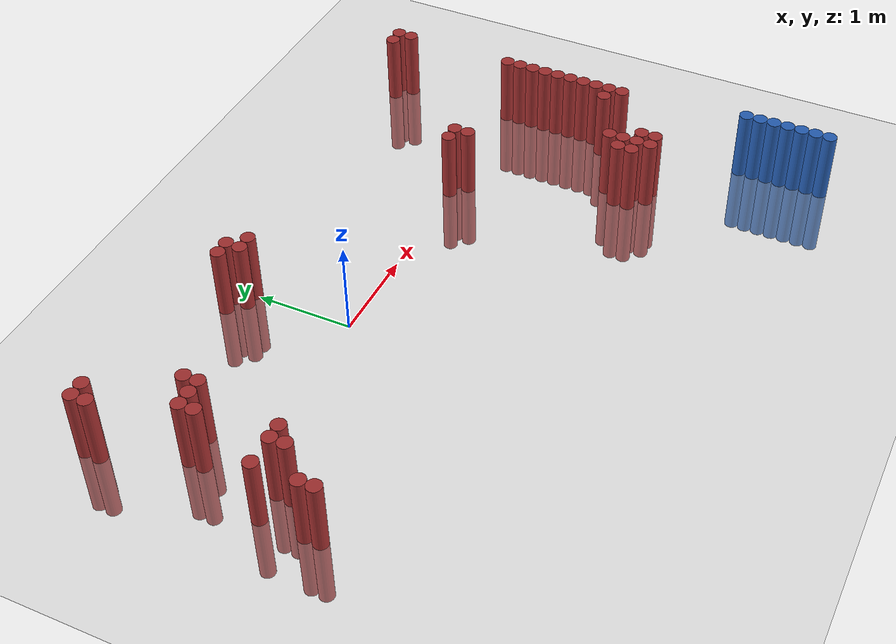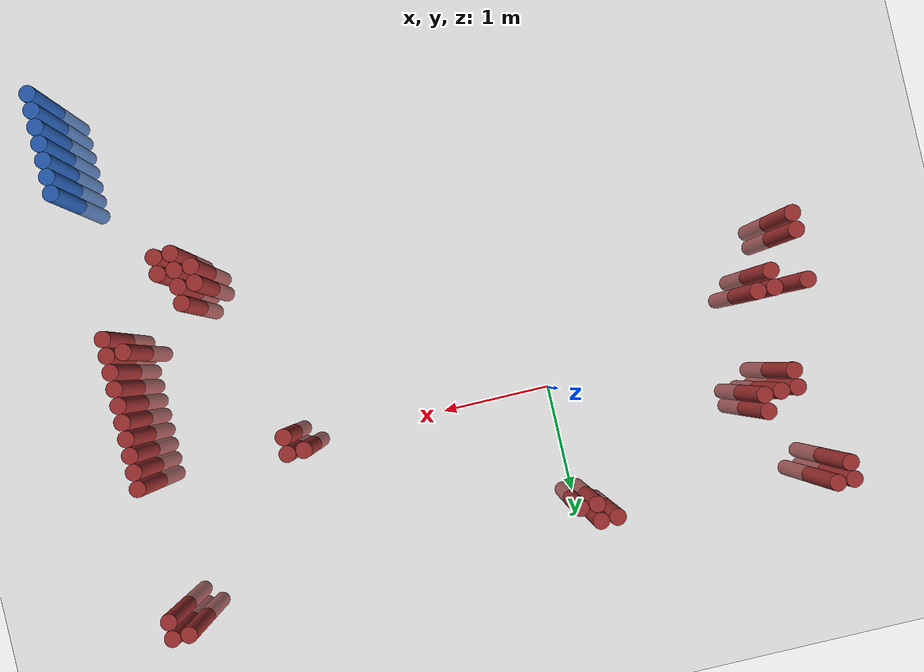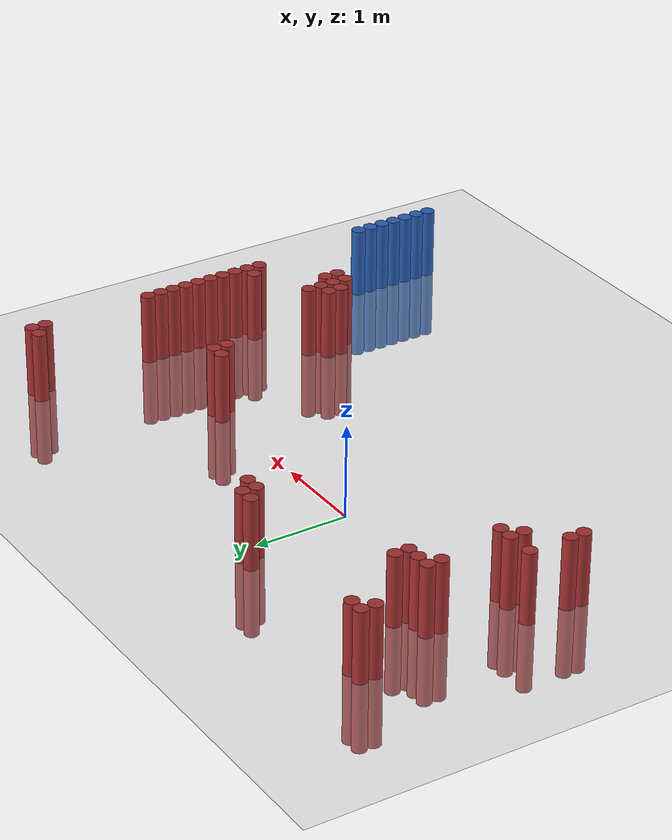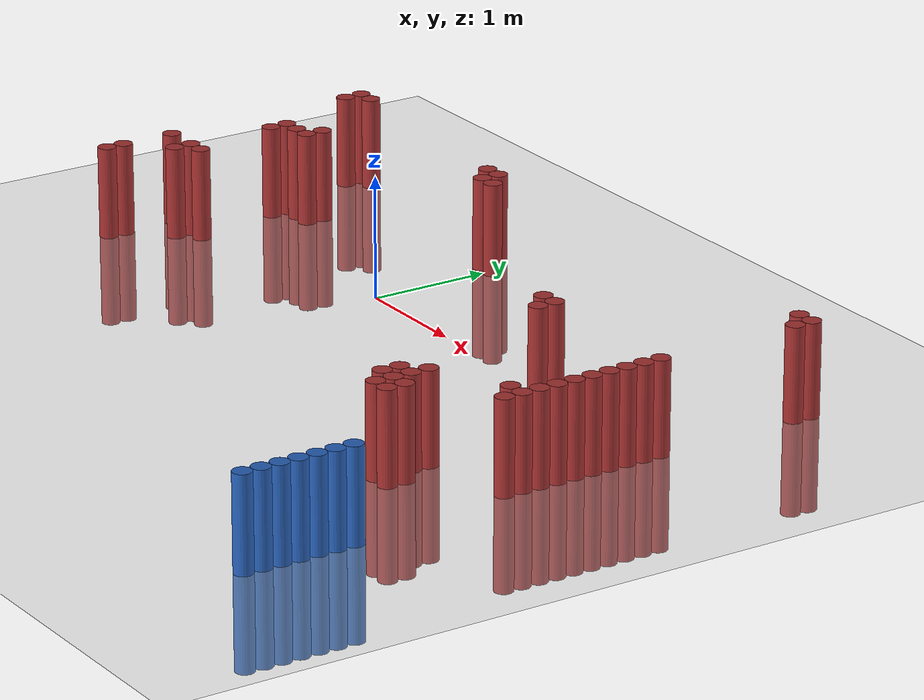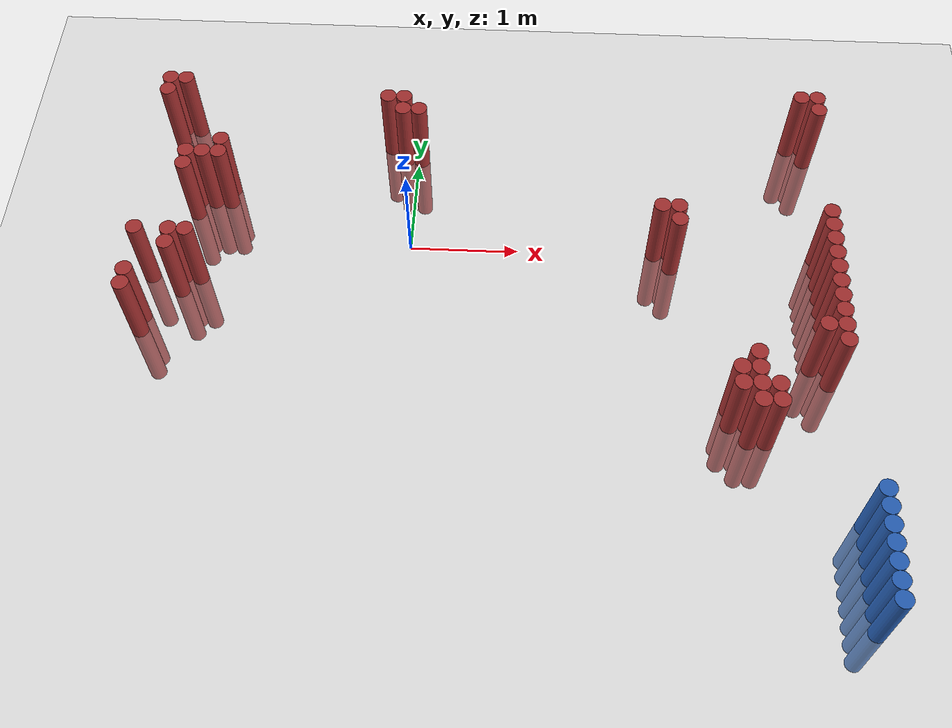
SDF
<sdf version="1.6">
 <world name="default">
  <model name="ground_plane">
   <static>1</static>
   <link name="link">
    <collision name="collision">
     <geometry><plane><normal>0 0 1</normal><size>100 100</size></plane></geometry>
     <surface><friction><ode><mu>100</mu><mu2>50</mu2></ode></friction></surface>
    </collision>
    <visual name="visual">
     <cast_shadows>0</cast_shadows>
     <geometry><plane><normal>0 0 1</normal><size>100 100</size></plane></geometry>
     <material>
      <script><uri>file://media/materials/scripts/gazebo.material</uri><name>Gazebo/Grey</name></script>
     </material>
    </visual>
   </link>
  </model>
  <model name="unit_cylinder_66">
   <static>1</static>
   <pose>3.925000 -3.575000 0.000000 0.000000 0.000000 0.000000</pose>
   <link name="link">
    <inertial>
     <mass>1</mass>
     <inertia><ixx>0.145833</ixx><ixy>0</ixy><ixz>0</ixz><iyy>0.145833</iyy><iyz>0</iyz><izz>0.125</izz></inertia>
    </inertial>
    <collision name="collision">
     <geometry><cylinder><radius>0.075000</radius><length>1.5</length></cylinder></geometry>
    </collision>
    <visual name="visual">
     <geometry><cylinder><radius>0.075000</radius><length>1.5</length></cylinder></geometry>
     <material>
      <ambient>0.152000 0.379000 0.720000 1</ambient>
      <diffuse>0.152000 0.379000 0.720000 1</diffuse>
     </material>
     <material>
      <script><name>Gazebo/Grey</name><uri>file://media/materials/scripts/gazebo.material</uri></script>
     </material>
    </visual>
   </link>
  </model>
  <model name="unit_cylinder_68">
   <static>1</static>
   <pose>3.925000 -3.425000 0.000000 0.000000 0.000000 0.000000</pose>
   <link name="link">
    <inertial>
     <mass>1</mass>
     <inertia><ixx>0.145833</ixx><ixy>0</ixy><ixz>0</ixz><iyy>0.145833</iyy><iyz>0</iyz><izz>0.125</izz></inertia>
    </inertial>
    <collision name="collision">
     <geometry><cylinder><radius>0.075000</radius><length>1.5</length></cylinder></geometry>
    </collision>
    <visual name="visual">
     <geometry><cylinder><radius>0.075000</radius><length>1.5</length></cylinder></geometry>
     <material>
      <ambient>0.152000 0.379000 0.720000 1</ambient>
      <diffuse>0.152000 0.379000 0.720000 1</diffuse>
     </material>
     <material>
      <script><name>Gazebo/Grey</name><uri>file://media/materials/scripts/gazebo.material</uri></script>
     </material>
    </visual>
   </link>
  </model>
  <model name="unit_cylinder_70">
   <static>1</static>
   <pose>3.925000 -3.275000 0.000000 0.000000 0.000000 0.000000</pose>
   <link name="link">
    <inertial>
     <mass>1</mass>
     <inertia><ixx>0.145833</ixx><ixy>0</ixy><ixz>0</ixz><iyy>0.145833</iyy><iyz>0</iyz><izz>0.125</izz></inertia>
    </inertial>
    <collision name="collision">
     <geometry><cylinder><radius>0.075000</radius><length>1.5</length></cylinder></geometry>
    </collision>
    <visual name="visual">
     <geometry><cylinder><radius>0.075000</radius><length>1.5</length></cylinder></geometry>
     <material>
      <ambient>0.152000 0.379000 0.720000 1</ambient>
      <diffuse>0.152000 0.379000 0.720000 1</diffuse>
     </material>
     <material>
      <script><name>Gazebo/Grey</name><uri>file://media/materials/scripts/gazebo.material</uri></script>
     </material>
    </visual>
   </link>
  </model>
  <model name="unit_cylinder_72">
   <static>1</static>
   <pose>3.925000 -3.125000 0.000000 0.000000 0.000000 0.000000</pose>
   <link name="link">
    <inertial>
     <mass>1</mass>
     <inertia><ixx>0.145833</ixx><ixy>0</ixy><ixz>0</ixz><iyy>0.145833</iyy><iyz>0</iyz><izz>0.125</izz></inertia>
    </inertial>
    <collision name="collision">
     <geometry><cylinder><radius>0.075000</radius><length>1.5</length></cylinder></geometry>
    </collision>
    <visual name="visual">
     <geometry><cylinder><radius>0.075000</radius><length>1.5</length></cylinder></geometry>
     <material>
      <ambient>0.152000 0.379000 0.720000 1</ambient>
      <diffuse>0.152000 0.379000 0.720000 1</diffuse>
     </material>
     <material>
      <script><name>Gazebo/Grey</name><uri>file://media/materials/scripts/gazebo.material</uri></script>
     </material>
    </visual>
   </link>
  </model>
  <model name="unit_cylinder_74">
   <static>1</static>
   <pose>3.925000 -2.975000 0.000000 0.000000 0.000000 0.000000</pose>
   <link name="link">
    <inertial>
     <mass>1</mass>
     <inertia><ixx>0.145833</ixx><ixy>0</ixy><ixz>0</ixz><iyy>0.145833</iyy><iyz>0</iyz><izz>0.125</izz></inertia>
    </inertial>
    <collision name="collision">
     <geometry><cylinder><radius>0.075000</radius><length>1.5</length></cylinder></geometry>
    </collision>
    <visual name="visual">
     <geometry><cylinder><radius>0.075000</radius><length>1.5</length></cylinder></geometry>
     <material>
      <ambient>0.152000 0.379000 0.720000 1</ambient>
      <diffuse>0.152000 0.379000 0.720000 1</diffuse>
     </material>
     <material>
      <script><name>Gazebo/Grey</name><uri>file://media/materials/scripts/gazebo.material</uri></script>
     </material>
    </visual>
   </link>
  </model>
  <model name="unit_cylinder_76">
   <static>1</static>
   <pose>3.925000 -2.825000 0.000000 0.000000 0.000000 0.000000</pose>
   <link name="link">
    <inertial>
     <mass>1</mass>
     <inertia><ixx>0.145833</ixx><ixy>0</ixy><ixz>0</ixz><iyy>0.145833</iyy><iyz>0</iyz><izz>0.125</izz></inertia>
    </inertial>
    <collision name="collision">
     <geometry><cylinder><radius>0.075000</radius><length>1.5</length></cylinder></geometry>
    </collision>
    <visual name="visual">
     <geometry><cylinder><radius>0.075000</radius><length>1.5</length></cylinder></geometry>
     <material>
      <ambient>0.152000 0.379000 0.720000 1</ambient>
      <diffuse>0.152000 0.379000 0.720000 1</diffuse>
     </material>
     <material>
      <script><name>Gazebo/Grey</name><uri>file://media/materials/scripts/gazebo.material</uri></script>
     </material>
    </visual>
   </link>
  </model>
  <model name="unit_cylinder_78">
   <static>1</static>
   <pose>3.925000 -2.675000 0.000000 0.000000 0.000000 0.000000</pose>
   <link name="link">
    <inertial>
     <mass>1</mass>
     <inertia><ixx>0.145833</ixx><ixy>0</ixy><ixz>0</ixz><iyy>0.145833</iyy><iyz>0</iyz><izz>0.125</izz></inertia>
    </inertial>
    <collision name="collision">
     <geometry><cylinder><radius>0.075000</radius><length>1.5</length></cylinder></geometry>
    </collision>
    <visual name="visual">
     <geometry><cylinder><radius>0.075000</radius><length>1.5</length></cylinder></geometry>
     <material>
      <ambient>0.152000 0.379000 0.720000 1</ambient>
      <diffuse>0.152000 0.379000 0.720000 1</diffuse>
     </material>
     <material>
      <script><name>Gazebo/Grey</name><uri>file://media/materials/scripts/gazebo.material</uri></script>
     </material>
    </visual>
   </link>
  </model>
  <model name="unit_cylinder_324">
   <static>1</static>
   <pose>-2.375000 -1.025000 0.000000 0.000000 0.000000 0.000000</pose>
   <link name="link">
    <inertial>
     <mass>1</mass>
     <inertia><ixx>0.145833</ixx><ixy>0</ixy><ixz>0</ixz><iyy>0.145833</iyy><iyz>0</iyz><izz>0.125</izz></inertia>
    </inertial>
    <collision name="collision">
     <geometry><cylinder><radius>0.075000</radius><length>1.5</length></cylinder></geometry>
    </collision>
    <visual name="visual">
     <geometry><cylinder><radius>0.075000</radius><length>1.5</length></cylinder></geometry>
     <material>
      <ambient>0.648000 0.192000 0.192000 1</ambient>
      <diffuse>0.648000 0.192000 0.192000 1</diffuse>
     </material>
     <material>
      <script><name>Gazebo/Grey</name><uri>file://media/materials/scripts/gazebo.material</uri></script>
     </material>
    </visual>
   </link>
  </model>
  <model name="unit_cylinder_325">
   <static>1</static>
   <pose>-2.375000 -0.875000 0.000000 0.000000 0.000000 0.000000</pose>
   <link name="link">
    <inertial>
     <mass>1</mass>
     <inertia><ixx>0.145833</ixx><ixy>0</ixy><ixz>0</ixz><iyy>0.145833</iyy><iyz>0</iyz><izz>0.125</izz></inertia>
    </inertial>
    <collision name="collision">
     <geometry><cylinder><radius>0.075000</radius><length>1.5</length></cylinder></geometry>
    </collision>
    <visual name="visual">
     <geometry><cylinder><radius>0.075000</radius><length>1.5</length></cylinder></geometry>
     <material>
      <ambient>0.648000 0.192000 0.192000 1</ambient>
      <diffuse>0.648000 0.192000 0.192000 1</diffuse>
     </material>
     <material>
      <script><name>Gazebo/Grey</name><uri>file://media/materials/scripts/gazebo.material</uri></script>
     </material>
    </visual>
   </link>
  </model>
  <model name="unit_cylinder_326">
   <static>1</static>
   <pose>-2.375000 -0.425000 0.000000 0.000000 0.000000 0.000000</pose>
   <link name="link">
    <inertial>
     <mass>1</mass>
     <inertia><ixx>0.145833</ixx><ixy>0</ixy><ixz>0</ixz><iyy>0.145833</iyy><iyz>0</iyz><izz>0.125</izz></inertia>
    </inertial>
    <collision name="collision">
     <geometry><cylinder><radius>0.075000</radius><length>1.5</length></cylinder></geometry>
    </collision>
    <visual name="visual">
     <geometry><cylinder><radius>0.075000</radius><length>1.5</length></cylinder></geometry>
     <material>
      <ambient>0.648000 0.192000 0.192000 1</ambient>
      <diffuse>0.648000 0.192000 0.192000 1</diffuse>
     </material>
     <material>
      <script><name>Gazebo/Grey</name><uri>file://media/materials/scripts/gazebo.material</uri></script>
     </material>
    </visual>
   </link>
  </model>
  <model name="unit_cylinder_327">
   <static>1</static>
   <pose>-2.375000 1.225000 0.000000 0.000000 0.000000 0.000000</pose>
   <link name="link">
    <inertial>
     <mass>1</mass>
     <inertia><ixx>0.145833</ixx><ixy>0</ixy><ixz>0</ixz><iyy>0.145833</iyy><iyz>0</iyz><izz>0.125</izz></inertia>
    </inertial>
    <collision name="collision">
     <geometry><cylinder><radius>0.075000</radius><length>1.5</length></cylinder></geometry>
    </collision>
    <visual name="visual">
     <geometry><cylinder><radius>0.075000</radius><length>1.5</length></cylinder></geometry>
     <material>
      <ambient>0.648000 0.192000 0.192000 1</ambient>
      <diffuse>0.648000 0.192000 0.192000 1</diffuse>
     </material>
     <material>
      <script><name>Gazebo/Grey</name><uri>file://media/materials/scripts/gazebo.material</uri></script>
     </material>
    </visual>
   </link>
  </model>
  <model name="unit_cylinder_328">
   <static>1</static>
   <pose>-2.375000 1.375000 0.000000 0.000000 0.000000 0.000000</pose>
   <link name="link">
    <inertial>
     <mass>1</mass>
     <inertia><ixx>0.145833</ixx><ixy>0</ixy><ixz>0</ixz><iyy>0.145833</iyy><iyz>0</iyz><izz>0.125</izz></inertia>
    </inertial>
    <collision name="collision">
     <geometry><cylinder><radius>0.075000</radius><length>1.5</length></cylinder></geometry>
    </collision>
    <visual name="visual">
     <geometry><cylinder><radius>0.075000</radius><length>1.5</length></cylinder></geometry>
     <material>
      <ambient>0.648000 0.192000 0.192000 1</ambient>
      <diffuse>0.648000 0.192000 0.192000 1</diffuse>
     </material>
     <material>
      <script><name>Gazebo/Grey</name><uri>file://media/materials/scripts/gazebo.material</uri></script>
     </material>
    </visual>
   </link>
  </model>
  <model name="unit_cylinder_331">
   <static>1</static>
   <pose>-2.225000 1.375000 0.000000 0.000000 0.000000 0.000000</pose>
   <link name="link">
    <inertial>
     <mass>1</mass>
     <inertia><ixx>0.145833</ixx><ixy>0</ixy><ixz>0</ixz><iyy>0.145833</iyy><iyz>0</iyz><izz>0.125</izz></inertia>
    </inertial>
    <collision name="collision">
     <geometry><cylinder><radius>0.075000</radius><length>1.5</length></cylinder></geometry>
    </collision>
    <visual name="visual">
     <geometry><cylinder><radius>0.075000</radius><length>1.5</length></cylinder></geometry>
     <material>
      <ambient>0.648000 0.192000 0.192000 1</ambient>
      <diffuse>0.648000 0.192000 0.192000 1</diffuse>
     </material>
     <material>
      <script><name>Gazebo/Grey</name><uri>file://media/materials/scripts/gazebo.material</uri></script>
     </material>
    </visual>
   </link>
  </model>
  <model name="unit_cylinder_335">
   <static>1</static>
   <pose>-2.075000 -0.575000 0.000000 0.000000 0.000000 0.000000</pose>
   <link name="link">
    <inertial>
     <mass>1</mass>
     <inertia><ixx>0.145833</ixx><ixy>0</ixy><ixz>0</ixz><iyy>0.145833</iyy><iyz>0</iyz><izz>0.125</izz></inertia>
    </inertial>
    <collision name="collision">
     <geometry><cylinder><radius>0.075000</radius><length>1.5</length></cylinder></geometry>
    </collision>
    <visual name="visual">
     <geometry><cylinder><radius>0.075000</radius><length>1.5</length></cylinder></geometry>
     <material>
      <ambient>0.648000 0.192000 0.192000 1</ambient>
      <diffuse>0.648000 0.192000 0.192000 1</diffuse>
     </material>
     <material>
      <script><name>Gazebo/Grey</name><uri>file://media/materials/scripts/gazebo.material</uri></script>
     </material>
    </visual>
   </link>
  </model>
  <model name="unit_cylinder_336">
   <static>1</static>
   <pose>-2.075000 -0.425000 0.000000 0.000000 0.000000 0.000000</pose>
   <link name="link">
    <inertial>
     <mass>1</mass>
     <inertia><ixx>0.145833</ixx><ixy>0</ixy><ixz>0</ixz><iyy>0.145833</iyy><iyz>0</iyz><izz>0.125</izz></inertia>
    </inertial>
    <collision name="collision">
     <geometry><cylinder><radius>0.075000</radius><length>1.5</length></cylinder></geometry>
    </collision>
    <visual name="visual">
     <geometry><cylinder><radius>0.075000</radius><length>1.5</length></cylinder></geometry>
     <material>
      <ambient>0.648000 0.192000 0.192000 1</ambient>
      <diffuse>0.648000 0.192000 0.192000 1</diffuse>
     </material>
     <material>
      <script><name>Gazebo/Grey</name><uri>file://media/materials/scripts/gazebo.material</uri></script>
     </material>
    </visual>
   </link>
  </model>
  <model name="unit_cylinder_337">
   <static>1</static>
   <pose>-2.075000 0.325000 0.000000 0.000000 0.000000 0.000000</pose>
   <link name="link">
    <inertial>
     <mass>1</mass>
     <inertia><ixx>0.145833</ixx><ixy>0</ixy><ixz>0</ixz><iyy>0.145833</iyy><iyz>0</iyz><izz>0.125</izz></inertia>
    </inertial>
    <collision name="collision">
     <geometry><cylinder><radius>0.075000</radius><length>1.5</length></cylinder></geometry>
    </collision>
    <visual name="visual">
     <geometry><cylinder><radius>0.075000</radius><length>1.5</length></cylinder></geometry>
     <material>
      <ambient>0.648000 0.192000 0.192000 1</ambient>
      <diffuse>0.648000 0.192000 0.192000 1</diffuse>
     </material>
     <material>
      <script><name>Gazebo/Grey</name><uri>file://media/materials/scripts/gazebo.material</uri></script>
     </material>
    </visual>
   </link>
  </model>
  <model name="unit_cylinder_338">
   <static>1</static>
   <pose>-2.075000 0.475000 0.000000 0.000000 0.000000 0.000000</pose>
   <link name="link">
    <inertial>
     <mass>1</mass>
     <inertia><ixx>0.145833</ixx><ixy>0</ixy><ixz>0</ixz><iyy>0.145833</iyy><iyz>0</iyz><izz>0.125</izz></inertia>
    </inertial>
    <collision name="collision">
     <geometry><cylinder><radius>0.075000</radius><length>1.5</length></cylinder></geometry>
    </collision>
    <visual name="visual">
     <geometry><cylinder><radius>0.075000</radius><length>1.5</length></cylinder></geometry>
     <material>
      <ambient>0.648000 0.192000 0.192000 1</ambient>
      <diffuse>0.648000 0.192000 0.192000 1</diffuse>
     </material>
     <material>
      <script><name>Gazebo/Grey</name><uri>file://media/materials/scripts/gazebo.material</uri></script>
     </material>
    </visual>
   </link>
  </model>
  <model name="unit_cylinder_342">
   <static>1</static>
   <pose>-1.925000 -0.425000 0.000000 0.000000 0.000000 0.000000</pose>
   <link name="link">
    <inertial>
     <mass>1</mass>
     <inertia><ixx>0.145833</ixx><ixy>0</ixy><ixz>0</ixz><iyy>0.145833</iyy><iyz>0</iyz><izz>0.125</izz></inertia>
    </inertial>
    <collision name="collision">
     <geometry><cylinder><radius>0.075000</radius><length>1.5</length></cylinder></geometry>
    </collision>
    <visual name="visual">
     <geometry><cylinder><radius>0.075000</radius><length>1.5</length></cylinder></geometry>
     <material>
      <ambient>0.648000 0.192000 0.192000 1</ambient>
      <diffuse>0.648000 0.192000 0.192000 1</diffuse>
     </material>
     <material>
      <script><name>Gazebo/Grey</name><uri>file://media/materials/scripts/gazebo.material</uri></script>
     </material>
    </visual>
   </link>
  </model>
  <model name="unit_cylinder_343">
   <static>1</static>
   <pose>-1.925000 0.475000 0.000000 0.000000 0.000000 0.000000</pose>
   <link name="link">
    <inertial>
     <mass>1</mass>
     <inertia><ixx>0.145833</ixx><ixy>0</ixy><ixz>0</ixz><iyy>0.145833</iyy><iyz>0</iyz><izz>0.125</izz></inertia>
    </inertial>
    <collision name="collision">
     <geometry><cylinder><radius>0.075000</radius><length>1.5</length></cylinder></geometry>
    </collision>
    <visual name="visual">
     <geometry><cylinder><radius>0.075000</radius><length>1.5</length></cylinder></geometry>
     <material>
      <ambient>0.648000 0.192000 0.192000 1</ambient>
      <diffuse>0.648000 0.192000 0.192000 1</diffuse>
     </material>
     <material>
      <script><name>Gazebo/Grey</name><uri>file://media/materials/scripts/gazebo.material</uri></script>
     </material>
    </visual>
   </link>
  </model>
  <model name="unit_cylinder_346">
   <static>1</static>
   <pose>-1.775000 0.475000 0.000000 0.000000 0.000000 0.000000</pose>
   <link name="link">
    <inertial>
     <mass>1</mass>
     <inertia><ixx>0.145833</ixx><ixy>0</ixy><ixz>0</ixz><iyy>0.145833</iyy><iyz>0</iyz><izz>0.125</izz></inertia>
    </inertial>
    <collision name="collision">
     <geometry><cylinder><radius>0.075000</radius><length>1.5</length></cylinder></geometry>
    </collision>
    <visual name="visual">
     <geometry><cylinder><radius>0.075000</radius><length>1.5</length></cylinder></geometry>
     <material>
      <ambient>0.648000 0.192000 0.192000 1</ambient>
      <diffuse>0.648000 0.192000 0.192000 1</diffuse>
     </material>
     <material>
      <script><name>Gazebo/Grey</name><uri>file://media/materials/scripts/gazebo.material</uri></script>
     </material>
    </visual>
   </link>
  </model>
  <model name="unit_cylinder_347">
   <static>1</static>
   <pose>-1.775000 0.625000 0.000000 0.000000 0.000000 0.000000</pose>
   <link name="link">
    <inertial>
     <mass>1</mass>
     <inertia><ixx>0.145833</ixx><ixy>0</ixy><ixz>0</ixz><iyy>0.145833</iyy><iyz>0</iyz><izz>0.125</izz></inertia>
    </inertial>
    <collision name="collision">
     <geometry><cylinder><radius>0.075000</radius><length>1.5</length></cylinder></geometry>
    </collision>
    <visual name="visual">
     <geometry><cylinder><radius>0.075000</radius><length>1.5</length></cylinder></geometry>
     <material>
      <ambient>0.648000 0.192000 0.192000 1</ambient>
      <diffuse>0.648000 0.192000 0.192000 1</diffuse>
     </material>
     <material>
      <script><name>Gazebo/Grey</name><uri>file://media/materials/scripts/gazebo.material</uri></script>
     </material>
    </visual>
   </link>
  </model>
  <model name="unit_cylinder_359">
   <static>1</static>
   <pose>-0.275000 1.225000 0.000000 0.000000 0.000000 0.000000</pose>
   <link name="link">
    <inertial>
     <mass>1</mass>
     <inertia><ixx>0.145833</ixx><ixy>0</ixy><ixz>0</ixz><iyy>0.145833</iyy><iyz>0</iyz><izz>0.125</izz></inertia>
    </inertial>
    <collision name="collision">
     <geometry><cylinder><radius>0.075000</radius><length>1.5</length></cylinder></geometry>
    </collision>
    <visual name="visual">
     <geometry><cylinder><radius>0.075000</radius><length>1.5</length></cylinder></geometry>
     <material>
      <ambient>0.648000 0.192000 0.192000 1</ambient>
      <diffuse>0.648000 0.192000 0.192000 1</diffuse>
     </material>
     <material>
      <script><name>Gazebo/Grey</name><uri>file://media/materials/scripts/gazebo.material</uri></script>
     </material>
    </visual>
   </link>
  </model>
  <model name="unit_cylinder_362">
   <static>1</static>
   <pose>-0.125000 1.075000 0.000000 0.000000 0.000000 0.000000</pose>
   <link name="link">
    <inertial>
     <mass>1</mass>
     <inertia><ixx>0.145833</ixx><ixy>0</ixy><ixz>0</ixz><iyy>0.145833</iyy><iyz>0</iyz><izz>0.125</izz></inertia>
    </inertial>
    <collision name="collision">
     <geometry><cylinder><radius>0.075000</radius><length>1.5</length></cylinder></geometry>
    </collision>
    <visual name="visual">
     <geometry><cylinder><radius>0.075000</radius><length>1.5</length></cylinder></geometry>
     <material>
      <ambient>0.648000 0.192000 0.192000 1</ambient>
      <diffuse>0.648000 0.192000 0.192000 1</diffuse>
     </material>
     <material>
      <script><name>Gazebo/Grey</name><uri>file://media/materials/scripts/gazebo.material</uri></script>
     </material>
    </visual>
   </link>
  </model>
  <model name="unit_cylinder_363">
   <static>1</static>
   <pose>-0.125000 1.225000 0.000000 0.000000 0.000000 0.000000</pose>
   <link name="link">
    <inertial>
     <mass>1</mass>
     <inertia><ixx>0.145833</ixx><ixy>0</ixy><ixz>0</ixz><iyy>0.145833</iyy><iyz>0</iyz><izz>0.125</izz></inertia>
    </inertial>
    <collision name="collision">
     <geometry><cylinder><radius>0.075000</radius><length>1.5</length></cylinder></geometry>
    </collision>
    <visual name="visual">
     <geometry><cylinder><radius>0.075000</radius><length>1.5</length></cylinder></geometry>
     <material>
      <ambient>0.648000 0.192000 0.192000 1</ambient>
      <diffuse>0.648000 0.192000 0.192000 1</diffuse>
     </material>
     <material>
      <script><name>Gazebo/Grey</name><uri>file://media/materials/scripts/gazebo.material</uri></script>
     </material>
    </visual>
   </link>
  </model>
  <model name="unit_cylinder_366">
   <static>1</static>
   <pose>0.025000 1.075000 0.000000 0.000000 0.000000 0.000000</pose>
   <link name="link">
    <inertial>
     <mass>1</mass>
     <inertia><ixx>0.145833</ixx><ixy>0</ixy><ixz>0</ixz><iyy>0.145833</iyy><iyz>0</iyz><izz>0.125</izz></inertia>
    </inertial>
    <collision name="collision">
     <geometry><cylinder><radius>0.075000</radius><length>1.5</length></cylinder></geometry>
    </collision>
    <visual name="visual">
     <geometry><cylinder><radius>0.075000</radius><length>1.5</length></cylinder></geometry>
     <material>
      <ambient>0.648000 0.192000 0.192000 1</ambient>
      <diffuse>0.648000 0.192000 0.192000 1</diffuse>
     </material>
     <material>
      <script><name>Gazebo/Grey</name><uri>file://media/materials/scripts/gazebo.material</uri></script>
     </material>
    </visual>
   </link>
  </model>
  <model name="unit_cylinder_394">
   <static>1</static>
   <pose>2.275000 0.025000 0.000000 0.000000 0.000000 0.000000</pose>
   <link name="link">
    <inertial>
     <mass>1</mass>
     <inertia><ixx>0.145833</ixx><ixy>0</ixy><ixz>0</ixz><iyy>0.145833</iyy><iyz>0</iyz><izz>0.125</izz></inertia>
    </inertial>
    <collision name="collision">
     <geometry><cylinder><radius>0.075000</radius><length>1.5</length></cylinder></geometry>
    </collision>
    <visual name="visual">
     <geometry><cylinder><radius>0.075000</radius><length>1.5</length></cylinder></geometry>
     <material>
      <ambient>0.648000 0.192000 0.192000 1</ambient>
      <diffuse>0.648000 0.192000 0.192000 1</diffuse>
     </material>
     <material>
      <script><name>Gazebo/Grey</name><uri>file://media/materials/scripts/gazebo.material</uri></script>
     </material>
    </visual>
   </link>
  </model>
  <model name="unit_cylinder_395">
   <static>1</static>
   <pose>2.425000 -0.125000 0.000000 0.000000 0.000000 0.000000</pose>
   <link name="link">
    <inertial>
     <mass>1</mass>
     <inertia><ixx>0.145833</ixx><ixy>0</ixy><ixz>0</ixz><iyy>0.145833</iyy><iyz>0</iyz><izz>0.125</izz></inertia>
    </inertial>
    <collision name="collision">
     <geometry><cylinder><radius>0.075000</radius><length>1.5</length></cylinder></geometry>
    </collision>
    <visual name="visual">
     <geometry><cylinder><radius>0.075000</radius><length>1.5</length></cylinder></geometry>
     <material>
      <ambient>0.648000 0.192000 0.192000 1</ambient>
      <diffuse>0.648000 0.192000 0.192000 1</diffuse>
     </material>
     <material>
      <script><name>Gazebo/Grey</name><uri>file://media/materials/scripts/gazebo.material</uri></script>
     </material>
    </visual>
   </link>
  </model>
  <model name="unit_cylinder_396">
   <static>1</static>
   <pose>2.425000 0.025000 0.000000 0.000000 0.000000 0.000000</pose>
   <link name="link">
    <inertial>
     <mass>1</mass>
     <inertia><ixx>0.145833</ixx><ixy>0</ixy><ixz>0</ixz><iyy>0.145833</iyy><iyz>0</iyz><izz>0.125</izz></inertia>
    </inertial>
    <collision name="collision">
     <geometry><cylinder><radius>0.075000</radius><length>1.5</length></cylinder></geometry>
    </collision>
    <visual name="visual">
     <geometry><cylinder><radius>0.075000</radius><length>1.5</length></cylinder></geometry>
     <material>
      <ambient>0.648000 0.192000 0.192000 1</ambient>
      <diffuse>0.648000 0.192000 0.192000 1</diffuse>
     </material>
     <material>
      <script><name>Gazebo/Grey</name><uri>file://media/materials/scripts/gazebo.material</uri></script>
     </material>
    </visual>
   </link>
  </model>
  <model name="unit_cylinder_418">
   <static>1</static>
   <pose>2.875000 -1.775000 0.000000 0.000000 0.000000 0.000000</pose>
   <link name="link">
    <inertial>
     <mass>1</mass>
     <inertia><ixx>0.145833</ixx><ixy>0</ixy><ixz>0</ixz><iyy>0.145833</iyy><iyz>0</iyz><izz>0.125</izz></inertia>
    </inertial>
    <collision name="collision">
     <geometry><cylinder><radius>0.075000</radius><length>1.5</length></cylinder></geometry>
    </collision>
    <visual name="visual">
     <geometry><cylinder><radius>0.075000</radius><length>1.5</length></cylinder></geometry>
     <material>
      <ambient>0.648000 0.192000 0.192000 1</ambient>
      <diffuse>0.648000 0.192000 0.192000 1</diffuse>
     </material>
     <material>
      <script><name>Gazebo/Grey</name><uri>file://media/materials/scripts/gazebo.material</uri></script>
     </material>
    </visual>
   </link>
  </model>
  <model name="unit_cylinder_419">
   <static>1</static>
   <pose>2.875000 -1.625000 0.000000 0.000000 0.000000 0.000000</pose>
   <link name="link">
    <inertial>
     <mass>1</mass>
     <inertia><ixx>0.145833</ixx><ixy>0</ixy><ixz>0</ixz><iyy>0.145833</iyy><iyz>0</iyz><izz>0.125</izz></inertia>
    </inertial>
    <collision name="collision">
     <geometry><cylinder><radius>0.075000</radius><length>1.5</length></cylinder></geometry>
    </collision>
    <visual name="visual">
     <geometry><cylinder><radius>0.075000</radius><length>1.5</length></cylinder></geometry>
     <material>
      <ambient>0.648000 0.192000 0.192000 1</ambient>
      <diffuse>0.648000 0.192000 0.192000 1</diffuse>
     </material>
     <material>
      <script><name>Gazebo/Grey</name><uri>file://media/materials/scripts/gazebo.material</uri></script>
     </material>
    </visual>
   </link>
  </model>
  <model name="unit_cylinder_420">
   <static>1</static>
   <pose>3.025000 -1.925000 0.000000 0.000000 0.000000 0.000000</pose>
   <link name="link">
    <inertial>
     <mass>1</mass>
     <inertia><ixx>0.145833</ixx><ixy>0</ixy><ixz>0</ixz><iyy>0.145833</iyy><iyz>0</iyz><izz>0.125</izz></inertia>
    </inertial>
    <collision name="collision">
     <geometry><cylinder><radius>0.075000</radius><length>1.5</length></cylinder></geometry>
    </collision>
    <visual name="visual">
     <geometry><cylinder><radius>0.075000</radius><length>1.5</length></cylinder></geometry>
     <material>
      <ambient>0.648000 0.192000 0.192000 1</ambient>
      <diffuse>0.648000 0.192000 0.192000 1</diffuse>
     </material>
     <material>
      <script><name>Gazebo/Grey</name><uri>file://media/materials/scripts/gazebo.material</uri></script>
     </material>
    </visual>
   </link>
  </model>
  <model name="unit_cylinder_421">
   <static>1</static>
   <pose>3.025000 -1.775000 0.000000 0.000000 0.000000 0.000000</pose>
   <link name="link">
    <inertial>
     <mass>1</mass>
     <inertia><ixx>0.145833</ixx><ixy>0</ixy><ixz>0</ixz><iyy>0.145833</iyy><iyz>0</iyz><izz>0.125</izz></inertia>
    </inertial>
    <collision name="collision">
     <geometry><cylinder><radius>0.075000</radius><length>1.5</length></cylinder></geometry>
    </collision>
    <visual name="visual">
     <geometry><cylinder><radius>0.075000</radius><length>1.5</length></cylinder></geometry>
     <material>
      <ambient>0.648000 0.192000 0.192000 1</ambient>
      <diffuse>0.648000 0.192000 0.192000 1</diffuse>
     </material>
     <material>
      <script><name>Gazebo/Grey</name><uri>file://media/materials/scripts/gazebo.material</uri></script>
     </material>
    </visual>
   </link>
  </model>
  <model name="unit_cylinder_422">
   <static>1</static>
   <pose>3.025000 -1.625000 0.000000 0.000000 0.000000 0.000000</pose>
   <link name="link">
    <inertial>
     <mass>1</mass>
     <inertia><ixx>0.145833</ixx><ixy>0</ixy><ixz>0</ixz><iyy>0.145833</iyy><iyz>0</iyz><izz>0.125</izz></inertia>
    </inertial>
    <collision name="collision">
     <geometry><cylinder><radius>0.075000</radius><length>1.5</length></cylinder></geometry>
    </collision>
    <visual name="visual">
     <geometry><cylinder><radius>0.075000</radius><length>1.5</length></cylinder></geometry>
     <material>
      <ambient>0.648000 0.192000 0.192000 1</ambient>
      <diffuse>0.648000 0.192000 0.192000 1</diffuse>
     </material>
     <material>
      <script><name>Gazebo/Grey</name><uri>file://media/materials/scripts/gazebo.material</uri></script>
     </material>
    </visual>
   </link>
  </model>
  <model name="unit_cylinder_423">
   <static>1</static>
   <pose>3.025000 -1.475000 0.000000 0.000000 0.000000 0.000000</pose>
   <link name="link">
    <inertial>
     <mass>1</mass>
     <inertia><ixx>0.145833</ixx><ixy>0</ixy><ixz>0</ixz><iyy>0.145833</iyy><iyz>0</iyz><izz>0.125</izz></inertia>
    </inertial>
    <collision name="collision">
     <geometry><cylinder><radius>0.075000</radius><length>1.5</length></cylinder></geometry>
    </collision>
    <visual name="visual">
     <geometry><cylinder><radius>0.075000</radius><length>1.5</length></cylinder></geometry>
     <material>
      <ambient>0.648000 0.192000 0.192000 1</ambient>
      <diffuse>0.648000 0.192000 0.192000 1</diffuse>
     </material>
     <material>
      <script><name>Gazebo/Grey</name><uri>file://media/materials/scripts/gazebo.material</uri></script>
     </material>
    </visual>
   </link>
  </model>
  <model name="unit_cylinder_425">
   <static>1</static>
   <pose>3.175000 -1.925000 0.000000 0.000000 0.000000 0.000000</pose>
   <link name="link">
    <inertial>
     <mass>1</mass>
     <inertia><ixx>0.145833</ixx><ixy>0</ixy><ixz>0</ixz><iyy>0.145833</iyy><iyz>0</iyz><izz>0.125</izz></inertia>
    </inertial>
    <collision name="collision">
     <geometry><cylinder><radius>0.075000</radius><length>1.5</length></cylinder></geometry>
    </collision>
    <visual name="visual">
     <geometry><cylinder><radius>0.075000</radius><length>1.5</length></cylinder></geometry>
     <material>
      <ambient>0.648000 0.192000 0.192000 1</ambient>
      <diffuse>0.648000 0.192000 0.192000 1</diffuse>
     </material>
     <material>
      <script><name>Gazebo/Grey</name><uri>file://media/materials/scripts/gazebo.material</uri></script>
     </material>
    </visual>
   </link>
  </model>
  <model name="unit_cylinder_426">
   <static>1</static>
   <pose>3.175000 -1.775000 0.000000 0.000000 0.000000 0.000000</pose>
   <link name="link">
    <inertial>
     <mass>1</mass>
     <inertia><ixx>0.145833</ixx><ixy>0</ixy><ixz>0</ixz><iyy>0.145833</iyy><iyz>0</iyz><izz>0.125</izz></inertia>
    </inertial>
    <collision name="collision">
     <geometry><cylinder><radius>0.075000</radius><length>1.5</length></cylinder></geometry>
    </collision>
    <visual name="visual">
     <geometry><cylinder><radius>0.075000</radius><length>1.5</length></cylinder></geometry>
     <material>
      <ambient>0.648000 0.192000 0.192000 1</ambient>
      <diffuse>0.648000 0.192000 0.192000 1</diffuse>
     </material>
     <material>
      <script><name>Gazebo/Grey</name><uri>file://media/materials/scripts/gazebo.material</uri></script>
     </material>
    </visual>
   </link>
  </model>
  <model name="unit_cylinder_430">
   <static>1</static>
   <pose>3.625000 -1.175000 0.000000 0.000000 0.000000 0.000000</pose>
   <link name="link">
    <inertial>
     <mass>1</mass>
     <inertia><ixx>0.145833</ixx><ixy>0</ixy><ixz>0</ixz><iyy>0.145833</iyy><iyz>0</iyz><izz>0.125</izz></inertia>
    </inertial>
    <collision name="collision">
     <geometry><cylinder><radius>0.075000</radius><length>1.5</length></cylinder></geometry>
    </collision>
    <visual name="visual">
     <geometry><cylinder><radius>0.075000</radius><length>1.5</length></cylinder></geometry>
     <material>
      <ambient>0.648000 0.192000 0.192000 1</ambient>
      <diffuse>0.648000 0.192000 0.192000 1</diffuse>
     </material>
     <material>
      <script><name>Gazebo/Grey</name><uri>file://media/materials/scripts/gazebo.material</uri></script>
     </material>
    </visual>
   </link>
  </model>
  <model name="unit_cylinder_431">
   <static>1</static>
   <pose>3.625000 1.375000 0.000000 0.000000 0.000000 0.000000</pose>
   <link name="link">
    <inertial>
     <mass>1</mass>
     <inertia><ixx>0.145833</ixx><ixy>0</ixy><ixz>0</ixz><iyy>0.145833</iyy><iyz>0</iyz><izz>0.125</izz></inertia>
    </inertial>
    <collision name="collision">
     <geometry><cylinder><radius>0.075000</radius><length>1.5</length></cylinder></geometry>
    </collision>
    <visual name="visual">
     <geometry><cylinder><radius>0.075000</radius><length>1.5</length></cylinder></geometry>
     <material>
      <ambient>0.648000 0.192000 0.192000 1</ambient>
      <diffuse>0.648000 0.192000 0.192000 1</diffuse>
     </material>
     <material>
      <script><name>Gazebo/Grey</name><uri>file://media/materials/scripts/gazebo.material</uri></script>
     </material>
    </visual>
   </link>
  </model>
  <model name="unit_cylinder_434">
   <static>1</static>
   <pose>3.775000 -1.325000 0.000000 0.000000 0.000000 0.000000</pose>
   <link name="link">
    <inertial>
     <mass>1</mass>
     <inertia><ixx>0.145833</ixx><ixy>0</ixy><ixz>0</ixz><iyy>0.145833</iyy><iyz>0</iyz><izz>0.125</izz></inertia>
    </inertial>
    <collision name="collision">
     <geometry><cylinder><radius>0.075000</radius><length>1.5</length></cylinder></geometry>
    </collision>
    <visual name="visual">
     <geometry><cylinder><radius>0.075000</radius><length>1.5</length></cylinder></geometry>
     <material>
      <ambient>0.648000 0.192000 0.192000 1</ambient>
      <diffuse>0.648000 0.192000 0.192000 1</diffuse>
     </material>
     <material>
      <script><name>Gazebo/Grey</name><uri>file://media/materials/scripts/gazebo.material</uri></script>
     </material>
    </visual>
   </link>
  </model>
  <model name="unit_cylinder_435">
   <static>1</static>
   <pose>3.775000 -1.175000 0.000000 0.000000 0.000000 0.000000</pose>
   <link name="link">
    <inertial>
     <mass>1</mass>
     <inertia><ixx>0.145833</ixx><ixy>0</ixy><ixz>0</ixz><iyy>0.145833</iyy><iyz>0</iyz><izz>0.125</izz></inertia>
    </inertial>
    <collision name="collision">
     <geometry><cylinder><radius>0.075000</radius><length>1.5</length></cylinder></geometry>
    </collision>
    <visual name="visual">
     <geometry><cylinder><radius>0.075000</radius><length>1.5</length></cylinder></geometry>
     <material>
      <ambient>0.648000 0.192000 0.192000 1</ambient>
      <diffuse>0.648000 0.192000 0.192000 1</diffuse>
     </material>
     <material>
      <script><name>Gazebo/Grey</name><uri>file://media/materials/scripts/gazebo.material</uri></script>
     </material>
    </visual>
   </link>
  </model>
  <model name="unit_cylinder_436">
   <static>1</static>
   <pose>3.775000 -1.025000 0.000000 0.000000 0.000000 0.000000</pose>
   <link name="link">
    <inertial>
     <mass>1</mass>
     <inertia><ixx>0.145833</ixx><ixy>0</ixy><ixz>0</ixz><iyy>0.145833</iyy><iyz>0</iyz><izz>0.125</izz></inertia>
    </inertial>
    <collision name="collision">
     <geometry><cylinder><radius>0.075000</radius><length>1.5</length></cylinder></geometry>
    </collision>
    <visual name="visual">
     <geometry><cylinder><radius>0.075000</radius><length>1.5</length></cylinder></geometry>
     <material>
      <ambient>0.648000 0.192000 0.192000 1</ambient>
      <diffuse>0.648000 0.192000 0.192000 1</diffuse>
     </material>
     <material>
      <script><name>Gazebo/Grey</name><uri>file://media/materials/scripts/gazebo.material</uri></script>
     </material>
    </visual>
   </link>
  </model>
  <model name="unit_cylinder_437">
   <static>1</static>
   <pose>3.775000 -0.875000 0.000000 0.000000 0.000000 0.000000</pose>
   <link name="link">
    <inertial>
     <mass>1</mass>
     <inertia><ixx>0.145833</ixx><ixy>0</ixy><ixz>0</ixz><iyy>0.145833</iyy><iyz>0</iyz><izz>0.125</izz></inertia>
    </inertial>
    <collision name="collision">
     <geometry><cylinder><radius>0.075000</radius><length>1.5</length></cylinder></geometry>
    </collision>
    <visual name="visual">
     <geometry><cylinder><radius>0.075000</radius><length>1.5</length></cylinder></geometry>
     <material>
      <ambient>0.648000 0.192000 0.192000 1</ambient>
      <diffuse>0.648000 0.192000 0.192000 1</diffuse>
     </material>
     <material>
      <script><name>Gazebo/Grey</name><uri>file://media/materials/scripts/gazebo.material</uri></script>
     </material>
    </visual>
   </link>
  </model>
  <model name="unit_cylinder_438">
   <static>1</static>
   <pose>3.775000 -0.725000 0.000000 0.000000 0.000000 0.000000</pose>
   <link name="link">
    <inertial>
     <mass>1</mass>
     <inertia><ixx>0.145833</ixx><ixy>0</ixy><ixz>0</ixz><iyy>0.145833</iyy><iyz>0</iyz><izz>0.125</izz></inertia>
    </inertial>
    <collision name="collision">
     <geometry><cylinder><radius>0.075000</radius><length>1.5</length></cylinder></geometry>
    </collision>
    <visual name="visual">
     <geometry><cylinder><radius>0.075000</radius><length>1.5</length></cylinder></geometry>
     <material>
      <ambient>0.648000 0.192000 0.192000 1</ambient>
      <diffuse>0.648000 0.192000 0.192000 1</diffuse>
     </material>
     <material>
      <script><name>Gazebo/Grey</name><uri>file://media/materials/scripts/gazebo.material</uri></script>
     </material>
    </visual>
   </link>
  </model>
  <model name="unit_cylinder_439">
   <static>1</static>
   <pose>3.775000 -0.575000 0.000000 0.000000 0.000000 0.000000</pose>
   <link name="link">
    <inertial>
     <mass>1</mass>
     <inertia><ixx>0.145833</ixx><ixy>0</ixy><ixz>0</ixz><iyy>0.145833</iyy><iyz>0</iyz><izz>0.125</izz></inertia>
    </inertial>
    <collision name="collision">
     <geometry><cylinder><radius>0.075000</radius><length>1.5</length></cylinder></geometry>
    </collision>
    <visual name="visual">
     <geometry><cylinder><radius>0.075000</radius><length>1.5</length></cylinder></geometry>
     <material>
      <ambient>0.648000 0.192000 0.192000 1</ambient>
      <diffuse>0.648000 0.192000 0.192000 1</diffuse>
     </material>
     <material>
      <script><name>Gazebo/Grey</name><uri>file://media/materials/scripts/gazebo.material</uri></script>
     </material>
    </visual>
   </link>
  </model>
  <model name="unit_cylinder_440">
   <static>1</static>
   <pose>3.775000 -0.425000 0.000000 0.000000 0.000000 0.000000</pose>
   <link name="link">
    <inertial>
     <mass>1</mass>
     <inertia><ixx>0.145833</ixx><ixy>0</ixy><ixz>0</ixz><iyy>0.145833</iyy><iyz>0</iyz><izz>0.125</izz></inertia>
    </inertial>
    <collision name="collision">
     <geometry><cylinder><radius>0.075000</radius><length>1.5</length></cylinder></geometry>
    </collision>
    <visual name="visual">
     <geometry><cylinder><radius>0.075000</radius><length>1.5</length></cylinder></geometry>
     <material>
      <ambient>0.648000 0.192000 0.192000 1</ambient>
      <diffuse>0.648000 0.192000 0.192000 1</diffuse>
     </material>
     <material>
      <script><name>Gazebo/Grey</name><uri>file://media/materials/scripts/gazebo.material</uri></script>
     </material>
    </visual>
   </link>
  </model>
  <model name="unit_cylinder_441">
   <static>1</static>
   <pose>3.775000 -0.275000 0.000000 0.000000 0.000000 0.000000</pose>
   <link name="link">
    <inertial>
     <mass>1</mass>
     <inertia><ixx>0.145833</ixx><ixy>0</ixy><ixz>0</ixz><iyy>0.145833</iyy><iyz>0</iyz><izz>0.125</izz></inertia>
    </inertial>
    <collision name="collision">
     <geometry><cylinder><radius>0.075000</radius><length>1.5</length></cylinder></geometry>
    </collision>
    <visual name="visual">
     <geometry><cylinder><radius>0.075000</radius><length>1.5</length></cylinder></geometry>
     <material>
      <ambient>0.648000 0.192000 0.192000 1</ambient>
      <diffuse>0.648000 0.192000 0.192000 1</diffuse>
     </material>
     <material>
      <script><name>Gazebo/Grey</name><uri>file://media/materials/scripts/gazebo.material</uri></script>
     </material>
    </visual>
   </link>
  </model>
  <model name="unit_cylinder_442">
   <static>1</static>
   <pose>3.775000 -0.125000 0.000000 0.000000 0.000000 0.000000</pose>
   <link name="link">
    <inertial>
     <mass>1</mass>
     <inertia><ixx>0.145833</ixx><ixy>0</ixy><ixz>0</ixz><iyy>0.145833</iyy><iyz>0</iyz><izz>0.125</izz></inertia>
    </inertial>
    <collision name="collision">
     <geometry><cylinder><radius>0.075000</radius><length>1.5</length></cylinder></geometry>
    </collision>
    <visual name="visual">
     <geometry><cylinder><radius>0.075000</radius><length>1.5</length></cylinder></geometry>
     <material>
      <ambient>0.648000 0.192000 0.192000 1</ambient>
      <diffuse>0.648000 0.192000 0.192000 1</diffuse>
     </material>
     <material>
      <script><name>Gazebo/Grey</name><uri>file://media/materials/scripts/gazebo.material</uri></script>
     </material>
    </visual>
   </link>
  </model>
  <model name="unit_cylinder_443">
   <static>1</static>
   <pose>3.775000 0.025000 0.000000 0.000000 0.000000 0.000000</pose>
   <link name="link">
    <inertial>
     <mass>1</mass>
     <inertia><ixx>0.145833</ixx><ixy>0</ixy><ixz>0</ixz><iyy>0.145833</iyy><iyz>0</iyz><izz>0.125</izz></inertia>
    </inertial>
    <collision name="collision">
     <geometry><cylinder><radius>0.075000</radius><length>1.5</length></cylinder></geometry>
    </collision>
    <visual name="visual">
     <geometry><cylinder><radius>0.075000</radius><length>1.5</length></cylinder></geometry>
     <material>
      <ambient>0.648000 0.192000 0.192000 1</ambient>
      <diffuse>0.648000 0.192000 0.192000 1</diffuse>
     </material>
     <material>
      <script><name>Gazebo/Grey</name><uri>file://media/materials/scripts/gazebo.material</uri></script>
     </material>
    </visual>
   </link>
  </model>
  <model name="unit_cylinder_444">
   <static>1</static>
   <pose>3.775000 1.225000 0.000000 0.000000 0.000000 0.000000</pose>
   <link name="link">
    <inertial>
     <mass>1</mass>
     <inertia><ixx>0.145833</ixx><ixy>0</ixy><ixz>0</ixz><iyy>0.145833</iyy><iyz>0</iyz><izz>0.125</izz></inertia>
    </inertial>
    <collision name="collision">
     <geometry><cylinder><radius>0.075000</radius><length>1.5</length></cylinder></geometry>
    </collision>
    <visual name="visual">
     <geometry><cylinder><radius>0.075000</radius><length>1.5</length></cylinder></geometry>
     <material>
      <ambient>0.648000 0.192000 0.192000 1</ambient>
      <diffuse>0.648000 0.192000 0.192000 1</diffuse>
     </material>
     <material>
      <script><name>Gazebo/Grey</name><uri>file://media/materials/scripts/gazebo.material</uri></script>
     </material>
    </visual>
   </link>
  </model>
  <model name="unit_cylinder_445">
   <static>1</static>
   <pose>3.775000 1.375000 0.000000 0.000000 0.000000 0.000000</pose>
   <link name="link">
    <inertial>
     <mass>1</mass>
     <inertia><ixx>0.145833</ixx><ixy>0</ixy><ixz>0</ixz><iyy>0.145833</iyy><iyz>0</iyz><izz>0.125</izz></inertia>
    </inertial>
    <collision name="collision">
     <geometry><cylinder><radius>0.075000</radius><length>1.5</length></cylinder></geometry>
    </collision>
    <visual name="visual">
     <geometry><cylinder><radius>0.075000</radius><length>1.5</length></cylinder></geometry>
     <material>
      <ambient>0.648000 0.192000 0.192000 1</ambient>
      <diffuse>0.648000 0.192000 0.192000 1</diffuse>
     </material>
     <material>
      <script><name>Gazebo/Grey</name><uri>file://media/materials/scripts/gazebo.material</uri></script>
     </material>
    </visual>
   </link>
  </model>
 </world>
</sdf>
